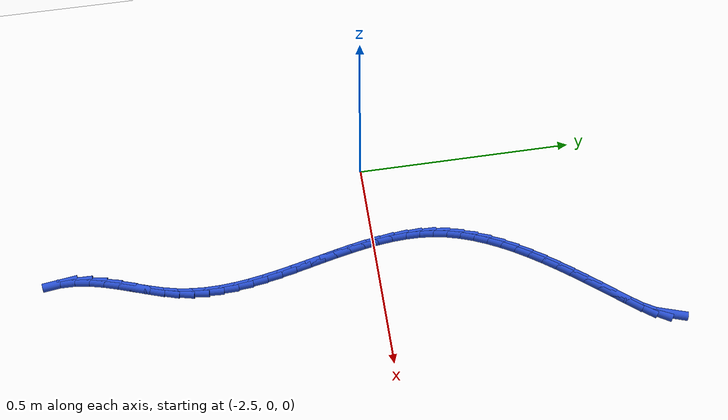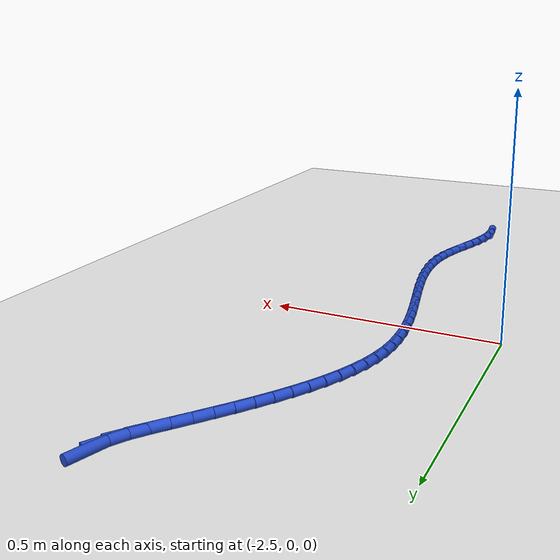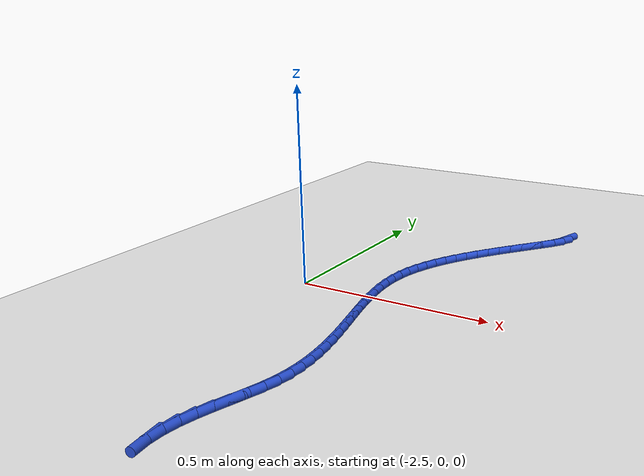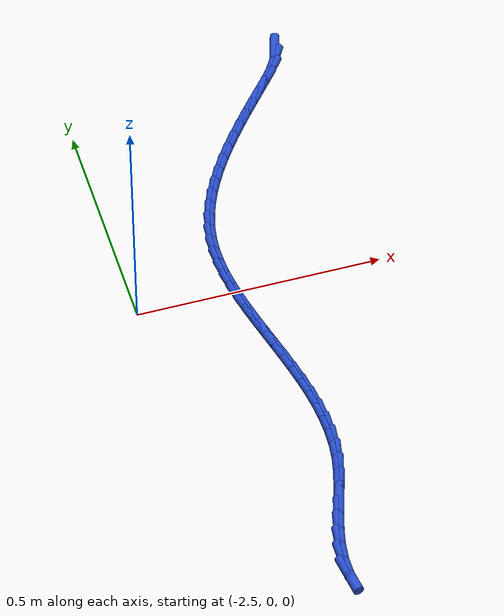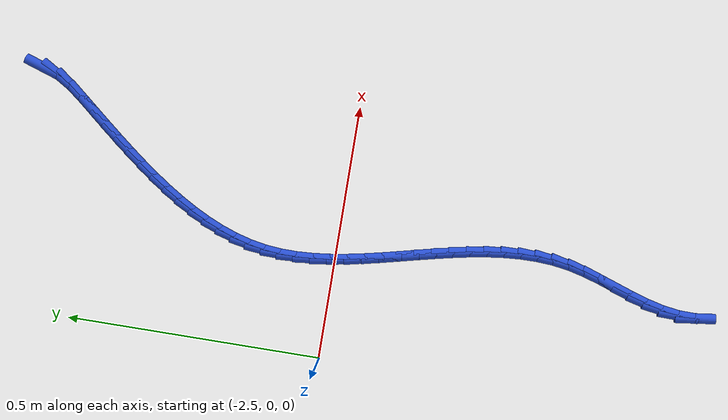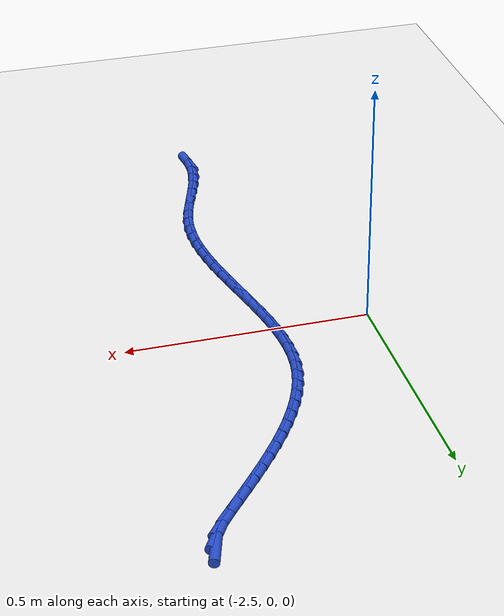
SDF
<sdf version="1.6">
 <world name="default">
  <model name="ground_plane">
   <static>1</static>
   <link name="link">
    <collision name="collision">
     <geometry><plane><normal>0 0 1</normal><size>100 100</size></plane></geometry>
     <surface><friction><ode><mu>100</mu><mu2>50</mu2></ode></friction></surface>
    </collision>
    <visual name="visual">
     <cast_shadows>0</cast_shadows>
     <geometry><plane><normal>0 0 1</normal><size>100 100</size></plane></geometry>
     <material>
      <script><uri>file://media/materials/scripts/gazebo.material</uri><name>Gazebo/WhiteGlow</name></script>
     </material>
    </visual>
   </link>
  </model>
  <model name="line">
   <link name="link_106">
    <pose>-2.0225185013615428 0.627012911761465 0.01 0 1.57 1.25289290050694</pose>
    <collision name="collision">
     <geometry><cylinder><radius>0.01</radius><length>0.08</length></cylinder></geometry>
    </collision>
    <visual name="visual">
     <material>
      <script><name>Gazebo/Blue</name><uri>file://media/materials/scripts/gazebo.material</uri></script>
     </material>
     <geometry><cylinder><radius>0.01</radius><length>0.08</length></cylinder></geometry>
    </visual>
   </link>
   <link name="link_107">
    <pose>-2.032527698284388 0.5965957563272244 0.01 0 1.57 1.0303287437206434</pose>
    <collision name="collision">
     <geometry><cylinder><radius>0.01</radius><length>0.08</length></cylinder></geometry>
    </collision>
    <visual name="visual">
     <material>
      <script><name>Gazebo/Blue</name><uri>file://media/materials/scripts/gazebo.material</uri></script>
     </material>
     <geometry><cylinder><radius>0.01</radius><length>0.08</length></cylinder></geometry>
    </visual>
   </link>
   <link name="link_108">
    <pose>-2.049464597172709 0.5683706677892604 0.01 0 1.57 0.9110376801612287</pose>
    <collision name="collision">
     <geometry><cylinder><radius>0.01</radius><length>0.08</length></cylinder></geometry>
    </collision>
    <visual name="visual">
     <material>
      <script><name>Gazebo/Blue</name><uri>file://media/materials/scripts/gazebo.material</uri></script>
     </material>
     <geometry><cylinder><radius>0.01</radius><length>0.08</length></cylinder></geometry>
    </visual>
   </link>
   <link name="link_109">
    <pose>-2.07044999628889 0.5413178055285922 0.01 0 1.57 0.8797425513096326</pose>
    <collision name="collision">
     <geometry><cylinder><radius>0.01</radius><length>0.08</length></cylinder></geometry>
    </collision>
    <visual name="visual">
     <material>
      <script><name>Gazebo/Blue</name><uri>file://media/materials/scripts/gazebo.material</uri></script>
     </material>
     <geometry><cylinder><radius>0.01</radius><length>0.08</length></cylinder></geometry>
    </visual>
   </link>
   <link name="link_110">
    <pose>-2.092676623210319 0.5144451434810047 0.01 0 1.57 0.8815367383727329</pose>
    <collision name="collision">
     <geometry><cylinder><radius>0.01</radius><length>0.08</length></cylinder></geometry>
    </collision>
    <visual name="visual">
     <material>
      <script><name>Gazebo/Blue</name><uri>file://media/materials/scripts/gazebo.material</uri></script>
     </material>
     <geometry><cylinder><radius>0.01</radius><length>0.08</length></cylinder></geometry>
    </visual>
   </link>
   <link name="link_111">
    <pose>-2.1149816680968225 0.4873789395003376 0.01 0 1.57 0.8889313363589988</pose>
    <collision name="collision">
     <geometry><cylinder><radius>0.01</radius><length>0.08</length></cylinder></geometry>
    </collision>
    <visual name="visual">
     <material>
      <script><name>Gazebo/Blue</name><uri>file://media/materials/scripts/gazebo.material</uri></script>
     </material>
     <geometry><cylinder><radius>0.01</radius><length>0.08</length></cylinder></geometry>
    </visual>
   </link>
   <link name="link_112">
    <pose>-2.1371300305553493 0.46009425100443696 0.01 0 1.57 0.9016703415784417</pose>
    <collision name="collision">
     <geometry><cylinder><radius>0.01</radius><length>0.08</length></cylinder></geometry>
    </collision>
    <visual name="visual">
     <material>
      <script><name>Gazebo/Blue</name><uri>file://media/materials/scripts/gazebo.material</uri></script>
     </material>
     <geometry><cylinder><radius>0.01</radius><length>0.08</length></cylinder></geometry>
    </visual>
   </link>
   <link name="link_113">
    <pose>-2.1588970549174884 0.43257006241158297 0.01 0 1.57 0.9199079083752044</pose>
    <collision name="collision">
     <geometry><cylinder><radius>0.01</radius><length>0.08</length></cylinder></geometry>
    </collision>
    <visual name="visual">
     <material>
      <script><name>Gazebo/Blue</name><uri>file://media/materials/scripts/gazebo.material</uri></script>
     </material>
     <geometry><cylinder><radius>0.01</radius><length>0.08</length></cylinder></geometry>
    </visual>
   </link>
   <link name="link_114">
    <pose>-2.180058085514834 0.4047853581400568 0.01 0 1.57 0.9439002191246916</pose>
    <collision name="collision">
     <geometry><cylinder><radius>0.01</radius><length>0.08</length></cylinder></geometry>
    </collision>
    <visual name="visual">
     <material>
      <script><name>Gazebo/Blue</name><uri>file://media/materials/scripts/gazebo.material</uri></script>
     </material>
     <geometry><cylinder><radius>0.01</radius><length>0.08</length></cylinder></geometry>
    </visual>
   </link>
   <link name="link_115">
    <pose>-2.200388466678978 0.3767191226081389 0.01 0 1.57 0.973998104757803</pose>
    <collision name="collision">
     <geometry><cylinder><radius>0.01</radius><length>0.08</length></cylinder></geometry>
    </collision>
    <visual name="visual">
     <material>
      <script><name>Gazebo/Blue</name><uri>file://media/materials/scripts/gazebo.material</uri></script>
     </material>
     <geometry><cylinder><radius>0.01</radius><length>0.08</length></cylinder></geometry>
    </visual>
   </link>
   <link name="link_116">
    <pose>-2.21966354274151 0.3483503402341109 0.01 0 1.57 1.0106346466676446</pose>
    <collision name="collision">
     <geometry><cylinder><radius>0.01</radius><length>0.08</length></cylinder></geometry>
    </collision>
    <visual name="visual">
     <material>
      <script><name>Gazebo/Blue</name><uri>file://media/materials/scripts/gazebo.material</uri></script>
     </material>
     <geometry><cylinder><radius>0.01</radius><length>0.08</length></cylinder></geometry>
    </visual>
   </link>
   <link name="link_117">
    <pose>-2.2376586580340243 0.3196579954362532 0.01 0 1.57 1.054303047970977</pose>
    <collision name="collision">
     <geometry><cylinder><radius>0.01</radius><length>0.08</length></cylinder></geometry>
    </collision>
    <visual name="visual">
     <material>
      <script><name>Gazebo/Blue</name><uri>file://media/materials/scripts/gazebo.material</uri></script>
     </material>
     <geometry><cylinder><radius>0.01</radius><length>0.08</length></cylinder></geometry>
    </visual>
   </link>
   <link name="link_118">
    <pose>-2.254149156888111 0.2906210726328462 0.01 0 1.57 1.1055183916318723</pose>
    <collision name="collision">
     <geometry><cylinder><radius>0.01</radius><length>0.08</length></cylinder></geometry>
    </collision>
    <visual name="visual">
     <material>
      <script><name>Gazebo/Blue</name><uri>file://media/materials/scripts/gazebo.material</uri></script>
     </material>
     <geometry><cylinder><radius>0.01</radius><length>0.08</length></cylinder></geometry>
    </visual>
   </link>
   <link name="link_119">
    <pose>-2.2689103836353626 0.2612185562421717 0.01 0 1.57 1.164755640516346</pose>
    <collision name="collision">
     <geometry><cylinder><radius>0.01</radius><length>0.08</length></cylinder></geometry>
    </collision>
    <visual name="visual">
     <material>
      <script><name>Gazebo/Blue</name><uri>file://media/materials/scripts/gazebo.material</uri></script>
     </material>
     <geometry><cylinder><radius>0.01</radius><length>0.08</length></cylinder></geometry>
    </visual>
   </link>
   <link name="link_120">
    <pose>-2.281717682607371 0.23142943068251004 0.01 0 1.57 1.2323568109662084</pose>
    <collision name="collision">
     <geometry><cylinder><radius>0.01</radius><length>0.08</length></cylinder></geometry>
    </collision>
    <visual name="visual">
     <material>
      <script><name>Gazebo/Blue</name><uri>file://media/materials/scripts/gazebo.material</uri></script>
     </material>
     <geometry><cylinder><radius>0.01</radius><length>0.08</length></cylinder></geometry>
    </visual>
   </link>
   <link name="link_121">
    <pose>-2.292346398135728 0.20123268037214215 0.01 0 1.57 1.308405160798024</pose>
    <collision name="collision">
     <geometry><cylinder><radius>0.01</radius><length>0.08</length></cylinder></geometry>
    </collision>
    <visual name="visual">
     <material>
      <script><name>Gazebo/Blue</name><uri>file://media/materials/scripts/gazebo.material</uri></script>
     </material>
     <geometry><cylinder><radius>0.01</radius><length>0.08</length></cylinder></geometry>
    </visual>
   </link>
   <link name="link_122">
    <pose>-2.3005718745520247 0.17060728972934874 0.01 0 1.57 1.3925764238279432</pose>
    <collision name="collision">
     <geometry><cylinder><radius>0.01</radius><length>0.08</length></cylinder></geometry>
    </collision>
    <visual name="visual">
     <material>
      <script><name>Gazebo/Blue</name><uri>file://media/materials/scripts/gazebo.material</uri></script>
     </material>
     <geometry><cylinder><radius>0.01</radius><length>0.08</length></cylinder></geometry>
    </visual>
   </link>
   <link name="link_123">
    <pose>-2.3061694562903288 0.13953224318478488 0.01 0 1.57 1.4809728771492954</pose>
    <collision name="collision">
     <geometry><cylinder><radius>0.01</radius><length>0.08</length></cylinder></geometry>
    </collision>
    <visual name="visual">
     <material>
      <script><name>Gazebo/Blue</name><uri>file://media/materials/scripts/gazebo.material</uri></script>
     </material>
     <geometry><cylinder><radius>0.01</radius><length>0.08</length></cylinder></geometry>
    </visual>
   </link>
   <link name="link_124">
    <pose>-2.309009612187698 0.10799801206546257 0.01 0 1.57 1.5607192897646314</pose>
    <collision name="collision">
     <geometry><cylinder><radius>0.01</radius><length>0.08</length></cylinder></geometry>
    </collision>
    <visual name="visual">
     <material>
      <script><name>Gazebo/Blue</name><uri>file://media/materials/scripts/gazebo.material</uri></script>
     </material>
     <geometry><cylinder><radius>0.01</radius><length>0.08</length></cylinder></geometry>
    </visual>
   </link>
   <link name="link_125">
    <pose>-2.3093316690928476 0.07603960972564003 0.01 0 1.57 -1.513114283618989</pose>
    <collision name="collision">
     <geometry><cylinder><radius>0.01</radius><length>0.08</length></cylinder></geometry>
    </collision>
    <visual name="visual">
     <material>
      <script><name>Gazebo/Blue</name><uri>file://media/materials/scripts/gazebo.material</uri></script>
     </material>
     <geometry><cylinder><radius>0.01</radius><length>0.08</length></cylinder></geometry>
    </visual>
   </link>
   <link name="link_126">
    <pose>-2.307464346939094 0.043702844321597524 0.01 0 1.57 -1.457175199347765</pose>
    <collision name="collision">
     <geometry><cylinder><radius>0.01</radius><length>0.08</length></cylinder></geometry>
    </collision>
    <visual name="visual">
     <material>
      <script><name>Gazebo/Blue</name><uri>file://media/materials/scripts/gazebo.material</uri></script>
     </material>
     <geometry><cylinder><radius>0.01</radius><length>0.08</length></cylinder></geometry>
    </visual>
   </link>
   <link name="link_127">
    <pose>-2.3037363656597574 0.01103352400961687 0.01 0 1.57 -1.4125271937108823</pose>
    <collision name="collision">
     <geometry><cylinder><radius>0.01</radius><length>0.08</length></cylinder></geometry>
    </collision>
    <visual name="visual">
     <material>
      <script><name>Gazebo/Blue</name><uri>file://media/materials/scripts/gazebo.material</uri></script>
     </material>
     <geometry><cylinder><radius>0.01</radius><length>0.08</length></cylinder></geometry>
    </visual>
   </link>
   <link name="link_128">
    <pose>-2.2984764451881565 -0.021922543054021654 0.01 0 1.57 -1.378511284173892</pose>
    <collision name="collision">
     <geometry><cylinder><radius>0.01</radius><length>0.08</length></cylinder></geometry>
    </collision>
    <visual name="visual">
     <material>
      <script><name>Gazebo/Blue</name><uri>file://media/materials/scripts/gazebo.material</uri></script>
     </material>
     <geometry><cylinder><radius>0.01</radius><length>0.08</length></cylinder></geometry>
    </visual>
   </link>
   <link name="link_129">
    <pose>-2.2920133054576084 -0.05511954871303727 0.01 0 1.57 -1.3544925733384872</pose>
    <collision name="collision">
     <geometry><cylinder><radius>0.01</radius><length>0.08</length></cylinder></geometry>
    </collision>
    <visual name="visual">
     <material>
      <script><name>Gazebo/Blue</name><uri>file://media/materials/scripts/gazebo.material</uri></script>
     </material>
     <geometry><cylinder><radius>0.01</radius><length>0.08</length></cylinder></geometry>
    </visual>
   </link>
   <link name="link_130">
    <pose>-2.2846756664014323 -0.08851168481114904 0.01 0 1.57 -1.3399511481372468</pose>
    <collision name="collision">
     <geometry><cylinder><radius>0.01</radius><length>0.08</length></cylinder></geometry>
    </collision>
    <visual name="visual">
     <material>
      <script><name>Gazebo/Blue</name><uri>file://media/materials/scripts/gazebo.material</uri></script>
     </material>
     <geometry><cylinder><radius>0.01</radius><length>0.08</length></cylinder></geometry>
    </visual>
   </link>
   <link name="link_131">
    <pose>-2.276792247952947 -0.12205314319207626 0.01 0 1.57 -1.334529650092377</pose>
    <collision name="collision">
     <geometry><cylinder><radius>0.01</radius><length>0.08</length></cylinder></geometry>
    </collision>
    <visual name="visual">
     <material>
      <script><name>Gazebo/Blue</name><uri>file://media/materials/scripts/gazebo.material</uri></script>
     </material>
     <geometry><cylinder><radius>0.01</radius><length>0.08</length></cylinder></geometry>
    </visual>
   </link>
   <link name="link_132">
    <pose>-2.26869177004547 -0.15569811569953815 0.01 0 1.57 -1.3380538490251737</pose>
    <collision name="collision">
     <geometry><cylinder><radius>0.01</radius><length>0.08</length></cylinder></geometry>
    </collision>
    <visual name="visual">
     <material>
      <script><name>Gazebo/Blue</name><uri>file://media/materials/scripts/gazebo.material</uri></script>
     </material>
     <geometry><cylinder><radius>0.01</radius><length>0.08</length></cylinder></geometry>
    </visual>
   </link>
   <link name="link_133">
    <pose>-2.260702952612321 -0.18940079417725486 0.01 0 1.57 -1.3505363744096948</pose>
    <collision name="collision">
     <geometry><cylinder><radius>0.01</radius><length>0.08</length></cylinder></geometry>
    </collision>
    <visual name="visual">
     <material>
      <script><name>Gazebo/Blue</name><uri>file://media/materials/scripts/gazebo.material</uri></script>
     </material>
     <geometry><cylinder><radius>0.01</radius><length>0.08</length></cylinder></geometry>
    </visual>
   </link>
   <link name="link_134">
    <pose>-2.2531545155868167 -0.2231153704689435 0.01 0 1.57 -1.372167669126445</pose>
    <collision name="collision">
     <geometry><cylinder><radius>0.01</radius><length>0.08</length></cylinder></geometry>
    </collision>
    <visual name="visual">
     <material>
      <script><name>Gazebo/Blue</name><uri>file://media/materials/scripts/gazebo.material</uri></script>
     </material>
     <geometry><cylinder><radius>0.01</radius><length>0.08</length></cylinder></geometry>
    </visual>
   </link>
   <link name="link_135">
    <pose>-2.2463751789022774 -0.25679603641832455 0.01 0 1.57 -1.4032927036540652</pose>
    <collision name="collision">
     <geometry><cylinder><radius>0.01</radius><length>0.08</length></cylinder></geometry>
    </collision>
    <visual name="visual">
     <material>
      <script><name>Gazebo/Blue</name><uri>file://media/materials/scripts/gazebo.material</uri></script>
     </material>
     <geometry><cylinder><radius>0.01</radius><length>0.08</length></cylinder></geometry>
    </visual>
   </link>
   <link name="link_136">
    <pose>-2.2406936624920197 -0.29039698386911683 0.01 0 1.57 -1.4443668212797907</pose>
    <collision name="collision">
     <geometry><cylinder><radius>0.01</radius><length>0.08</length></cylinder></geometry>
    </collision>
    <visual name="visual">
     <material>
      <script><name>Gazebo/Blue</name><uri>file://media/materials/scripts/gazebo.material</uri></script>
     </material>
     <geometry><cylinder><radius>0.01</radius><length>0.08</length></cylinder></geometry>
    </visual>
   </link>
   <link name="link_137">
    <pose>-2.2364386862893637 -0.32387240466503986 0.01 0 1.57 -1.4958794613575783</pose>
    <collision name="collision">
     <geometry><cylinder><radius>0.01</radius><length>0.08</length></cylinder></geometry>
    </collision>
    <visual name="visual">
     <material>
      <script><name>Gazebo/Blue</name><uri>file://media/materials/scripts/gazebo.material</uri></script>
     </material>
     <geometry><cylinder><radius>0.01</radius><length>0.08</length></cylinder></geometry>
    </visual>
   </link>
   <link name="link_138">
    <pose>-2.2339389702276264 -0.35717649064981266 0.01 0 1.57 -1.558232031845843</pose>
    <collision name="collision">
     <geometry><cylinder><radius>0.01</radius><length>0.08</length></cylinder></geometry>
    </collision>
    <visual name="visual">
     <material>
      <script><name>Gazebo/Blue</name><uri>file://media/materials/scripts/gazebo.material</uri></script>
     </material>
     <geometry><cylinder><radius>0.01</radius><length>0.08</length></cylinder></geometry>
    </visual>
   </link>
   <link name="link_139">
    <pose>-2.233523234240127 -0.39026343366715444 0.01 0 1.57 1.5100326732824478</pose>
    <collision name="collision">
     <geometry><cylinder><radius>0.01</radius><length>0.08</length></cylinder></geometry>
    </collision>
    <visual name="visual">
     <material>
      <script><name>Gazebo/Blue</name><uri>file://media/materials/scripts/gazebo.material</uri></script>
     </material>
     <geometry><cylinder><radius>0.01</radius><length>0.08</length></cylinder></geometry>
    </visual>
   </link>
   <link name="link_140">
    <pose>-2.2355201982601844 -0.4230874255607854 0.01 0 1.57 1.426086845172627</pose>
    <collision name="collision">
     <geometry><cylinder><radius>0.01</radius><length>0.08</length></cylinder></geometry>
    </collision>
    <visual name="visual">
     <material>
      <script><name>Gazebo/Blue</name><uri>file://media/materials/scripts/gazebo.material</uri></script>
     </material>
     <geometry><cylinder><radius>0.01</radius><length>0.08</length></cylinder></geometry>
    </visual>
   </link>
   <link name="link_141">
    <pose>-2.2402585822211156 -0.4556026581744228 0.01 0 1.57 1.337890832107399</pose>
    <collision name="collision">
     <geometry><cylinder><radius>0.01</radius><length>0.08</length></cylinder></geometry>
    </collision>
    <visual name="visual">
     <material>
      <script><name>Gazebo/Blue</name><uri>file://media/materials/scripts/gazebo.material</uri></script>
     </material>
     <geometry><cylinder><radius>0.01</radius><length>0.08</length></cylinder></geometry>
    </visual>
   </link>
   <link name="link_142">
    <pose>-2.2478931279362833 -0.48778738048751885 0.01 0 1.57 1.2738347670667702</pose>
    <collision name="collision">
     <geometry><cylinder><radius>0.01</radius><length>0.08</length></cylinder></geometry>
    </collision>
    <visual name="visual">
     <material>
      <script><name>Gazebo/Blue</name><uri>file://media/materials/scripts/gazebo.material</uri></script>
     </material>
     <geometry><cylinder><radius>0.01</radius><length>0.08</length></cylinder></geometry>
    </visual>
   </link>
   <link name="link_143">
    <pose>-2.257672523896736 -0.5197451276233257 0.01 0 1.57 1.241892981943486</pose>
    <collision name="collision">
     <geometry><cylinder><radius>0.01</radius><length>0.08</length></cylinder></geometry>
    </collision>
    <visual name="visual">
     <material>
      <script><name>Gazebo/Blue</name><uri>file://media/materials/scripts/gazebo.material</uri></script>
     </material>
     <geometry><cylinder><radius>0.01</radius><length>0.08</length></cylinder></geometry>
    </visual>
   </link>
   <link name="link_144">
    <pose>-2.2685514486507254 -0.5516200894558323 0.01 0 1.57 1.2409652859870492</pose>
    <collision name="collision">
     <geometry><cylinder><radius>0.01</radius><length>0.08</length></cylinder></geometry>
    </collision>
    <visual name="visual">
     <material>
      <script><name>Gazebo/Blue</name><uri>file://media/materials/scripts/gazebo.material</uri></script>
     </material>
     <geometry><cylinder><radius>0.01</radius><length>0.08</length></cylinder></geometry>
    </visual>
   </link>
   <link name="link_145">
    <pose>-2.2794844269396 -0.583556477126952 0.01 0 1.57 1.2708286062489336</pose>
    <collision name="collision">
     <geometry><cylinder><radius>0.01</radius><length>0.08</length></cylinder></geometry>
    </collision>
    <visual name="visual">
     <material>
      <script><name>Gazebo/Blue</name><uri>file://media/materials/scripts/gazebo.material</uri></script>
     </material>
     <geometry><cylinder><radius>0.01</radius><length>0.08</length></cylinder></geometry>
    </visual>
   </link>
   <link name="link_146">
    <pose>-2.2894259835047097 -0.6156985017785978 0.01 0 1.57 1.3321512325769373</pose>
    <collision name="collision">
     <geometry><cylinder><radius>0.01</radius><length>0.08</length></cylinder></geometry>
    </collision>
    <visual name="visual">
     <material>
      <script><name>Gazebo/Blue</name><uri>file://media/materials/scripts/gazebo.material</uri></script>
     </material>
     <geometry><cylinder><radius>0.01</radius><length>0.08</length></cylinder></geometry>
    </visual>
   </link>
   <link name="link_147">
    <pose>-2.297330643087403 -0.6481903745526831 0.01 0 1.57 1.425632412520675</pose>
    <collision name="collision">
     <geometry><cylinder><radius>0.01</radius><length>0.08</length></cylinder></geometry>
    </collision>
    <visual name="visual">
     <material>
      <script><name>Gazebo/Blue</name><uri>file://media/materials/scripts/gazebo.material</uri></script>
     </material>
     <geometry><cylinder><radius>0.01</radius><length>0.08</length></cylinder></geometry>
    </visual>
   </link>
   <link name="link_148">
    <pose>-2.30215293042903 -0.6811763065911212 0.01 0 1.57 1.550146286645905</pose>
    <collision name="collision">
     <geometry><cylinder><radius>0.01</radius><length>0.08</length></cylinder></geometry>
    </collision>
    <visual name="visual">
     <material>
      <script><name>Gazebo/Blue</name><uri>file://media/materials/scripts/gazebo.material</uri></script>
     </material>
     <geometry><cylinder><radius>0.01</radius><length>0.08</length></cylinder></geometry>
    </visual>
   </link>
   <link name="link_149">
    <pose>-2.3028473702709387 -0.7148005090358263 0.01 0 1.57 -1.4413494399307467</pose>
    <collision name="collision">
     <geometry><cylinder><radius>0.01</radius><length>0.08</length></cylinder></geometry>
    </collision>
    <visual name="visual">
     <material>
      <script><name>Gazebo/Blue</name><uri>file://media/materials/scripts/gazebo.material</uri></script>
     </material>
     <geometry><cylinder><radius>0.01</radius><length>0.08</length></cylinder></geometry>
    </visual>
   </link>
  </model>
 </world>
</sdf>
